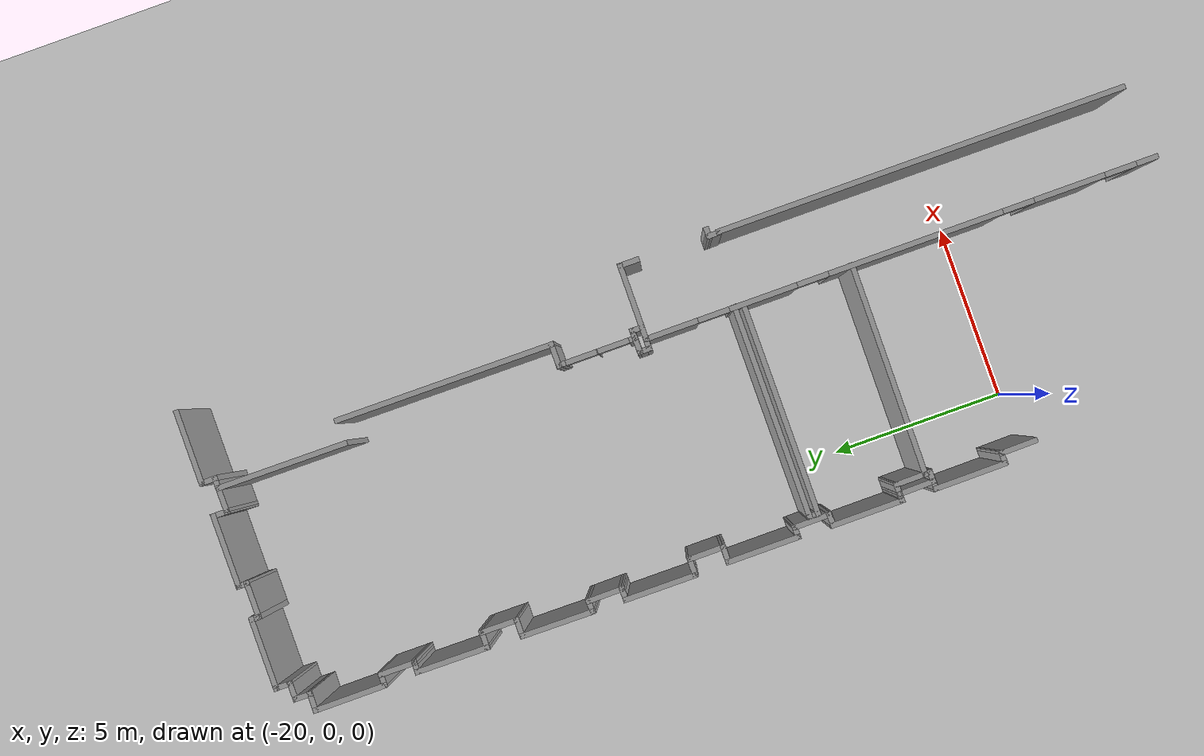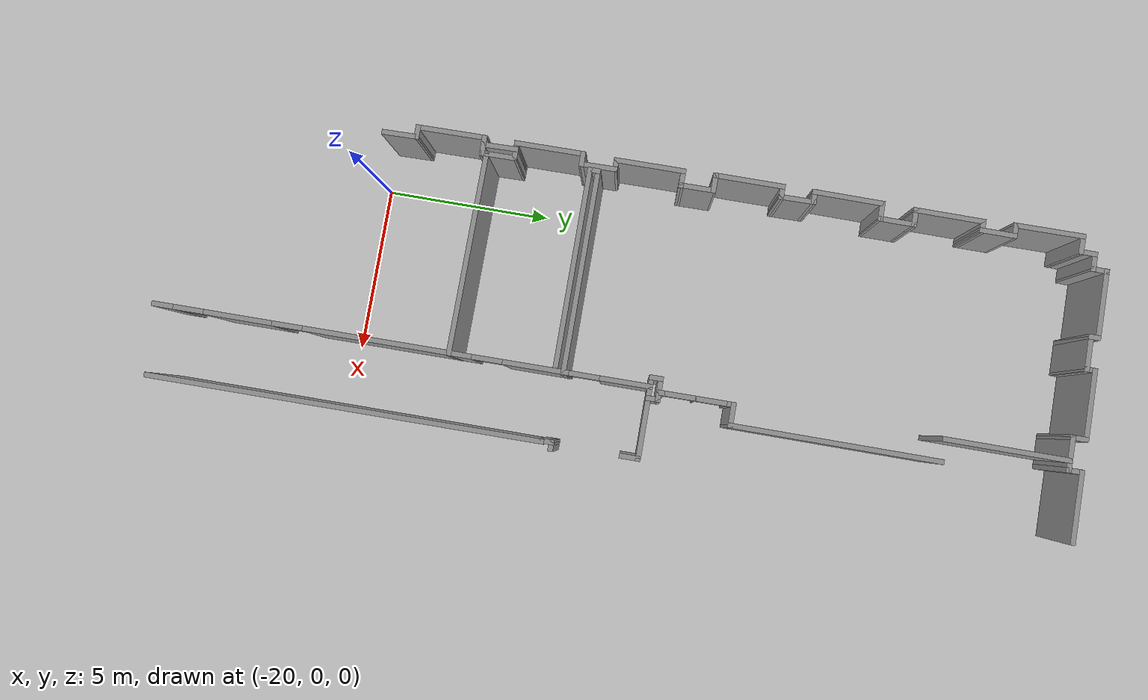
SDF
<sdf version="1.6">
 <world name="default">
  <model name="ground_plane">
   <static>1</static>
   <link name="link">
    <collision name="collision">
     <geometry><plane><normal>0 0 1</normal><size>100 100</size></plane></geometry>
     <surface>
      <contact><collide_bitmask>65535</collide_bitmask></contact>
      <friction><ode><mu>100</mu><mu2>50</mu2></ode></friction>
     </surface>
    </collision>
    <visual name="visual">
     <cast_shadows>0</cast_shadows>
     <geometry><plane><normal>0 0 1</normal><size>100 100</size></plane></geometry>
     <material>
      <script><uri>file://media/materials/scripts/gazebo.material</uri><name>Gazebo/Grey</name></script>
     </material>
    </visual>
   </link>
  </model>
  <model name="Myhal_5th_floor">
   <pose>-0.342666 0.4433 0 0 -0 0</pose>
   <link name="Wall_162">
    <collision name="Wall_162_Collision">
     <geometry><box><size>11.7261 0.15 2.5</size></box></geometry>
     <pose>0 0 1.25 0 -0 0</pose>
    </collision>
    <visual name="Wall_162_Visual">
     <pose>0 0 1.25 0 -0 0</pose>
     <geometry><box><size>11.7261 0.15 2.5</size></box></geometry>
     <material>
      <script><uri>file://media/materials/scripts/gazebo.material</uri><name>Gazebo/Grey</name></script>
      <ambient>1 1 1 1</ambient>
     </material>
     <meta><layer>0</layer></meta>
    </visual>
    <pose>-12.7689 0.018429 0 0 -0 1.57102</pose>
   </link>
   <link name="Wall_619">
    <collision name="Wall_619_Collision">
     <geometry><box><size>2.16684 0.15 2.5</size></box></geometry>
     <pose>0 0 1.25 0 -0 0</pose>
    </collision>
    <visual name="Wall_619_Visual">
     <pose>0 0 1.25 0 -0 0</pose>
     <geometry><box><size>2.16684 0.15 2.5</size></box></geometry>
     <material>
      <script><uri>file://media/materials/scripts/gazebo.material</uri><name>Gazebo/Grey</name></script>
      <ambient>1 1 1 1</ambient>
     </material>
     <meta><layer>0</layer></meta>
    </visual>
    <pose>-13.4625 21.2321 0 0 -0 3.14159</pose>
   </link>
   <link name="Wall_620">
    <collision name="Wall_620_Collision">
     <geometry><box><size>0.532558 0.15 2.5</size></box></geometry>
     <pose>0 0 1.25 0 -0 0</pose>
    </collision>
    <visual name="Wall_620_Visual">
     <pose>0 0 1.25 0 -0 0</pose>
     <geometry><box><size>0.532558 0.15 2.5</size></box></geometry>
     <material>
      <script><uri>file://media/materials/scripts/gazebo.material</uri><name>Gazebo/Grey</name></script>
      <ambient>1 1 1 1</ambient>
     </material>
     <meta><layer>0</layer></meta>
    </visual>
    <pose>-14.4728 21.0408 0 0 -0 -1.56134</pose>
   </link>
   <link name="Wall_621">
    <collision name="Wall_621_Collision">
     <geometry><box><size>1.09763 0.15 2.5</size></box></geometry>
     <pose>0 0 1.25 0 -0 0</pose>
    </collision>
    <visual name="Wall_621_Visual">
     <pose>0 0 1.25 0 -0 0</pose>
     <geometry><box><size>1.09763 0.15 2.5</size></box></geometry>
     <material>
      <script><uri>file://media/materials/scripts/gazebo.material</uri><name>Gazebo/Grey</name></script>
      <ambient>1 1 1 1</ambient>
     </material>
     <meta><layer>0</layer></meta>
    </visual>
    <pose>-14.9484 20.8514 0 0 -0 -3.13778</pose>
   </link>
   <link name="Wall_622">
    <collision name="Wall_622_Collision">
     <geometry><box><size>0.532541 0.15 2.5</size></box></geometry>
     <pose>0 0 1.25 0 -0 0</pose>
    </collision>
    <visual name="Wall_622_Visual">
     <pose>0 0 1.25 0 -0 0</pose>
     <geometry><box><size>0.532541 0.15 2.5</size></box></geometry>
     <material>
      <script><uri>file://media/materials/scripts/gazebo.material</uri><name>Gazebo/Grey</name></script>
      <ambient>1 1 1 1</ambient>
     </material>
     <meta><layer>0</layer></meta>
    </visual>
    <pose>-15.4186 21.0408 0 0 -0 1.5708</pose>
   </link>
   <link name="Wall_624">
    <collision name="Wall_624_Collision">
     <geometry><box><size>3.76142 0.15 2.5</size></box></geometry>
     <pose>0 0 1.25 0 -0 0</pose>
    </collision>
    <visual name="Wall_624_Visual">
     <pose>0 0 1.25 0 -0 0</pose>
     <geometry><box><size>3.76142 0.15 2.5</size></box></geometry>
     <material>
      <script><uri>file://media/materials/scripts/gazebo.material</uri><name>Gazebo/Grey</name></script>
      <ambient>1 1 1 1</ambient>
     </material>
     <meta><layer>0</layer></meta>
    </visual>
    <pose>-14.7552 19.0459 0 0 -0 -1.57409</pose>
   </link>
   <link name="Wall_648">
    <collision name="Wall_648_Collision">
     <geometry><box><size>0.623688 0.15 2.5</size></box></geometry>
     <pose>0 0 1.25 0 -0 0</pose>
    </collision>
    <visual name="Wall_648_Visual">
     <pose>0 0 1.25 0 -0 0</pose>
     <geometry><box><size>0.623688 0.15 2.5</size></box></geometry>
     <material>
      <script><uri>file://media/materials/scripts/gazebo.material</uri><name>Gazebo/Grey</name></script>
      <ambient>1 1 1 1</ambient>
     </material>
     <meta><layer>0</layer></meta>
    </visual>
    <pose>-12.7463 8.38799 0 0 -0 1.5683</pose>
   </link>
   <link name="Wall_651">
    <collision name="Wall_651_Collision">
     <geometry><box><size>2.24872 0.15 2.5</size></box></geometry>
     <pose>0 0 1.25 0 -0 0</pose>
    </collision>
    <visual name="Wall_651_Visual">
     <pose>0 0 1.25 0 -0 0</pose>
     <geometry><box><size>2.24872 0.15 2.5</size></box></geometry>
     <material>
      <script><uri>file://media/materials/scripts/gazebo.material</uri><name>Gazebo/Grey</name></script>
      <ambient>1 1 1 1</ambient>
     </material>
     <meta><layer>0</layer></meta>
    </visual>
    <pose>-13.7951 8.62718 0 0 -0 3.13923</pose>
   </link>
   <link name="Wall_652">
    <pose>-14.84 1.32772 0 0 -0 -1.57019</pose>
    <visual name="Wall_652_Visual_0">
     <pose>-6.5977 0 1.25 0 -0 0</pose>
     <geometry><box><size>1.56841 0.15 2.5</size></box></geometry>
     <material>
      <script><uri>file://media/materials/scripts/gazebo.material</uri><name>Gazebo/Grey</name></script>
      <ambient>1 1 1 1</ambient>
     </material>
     <meta><layer>0</layer></meta>
    </visual>
    <collision name="Wall_652_Collision_0">
     <geometry><box><size>1.56841 0.15 2.5</size></box></geometry>
     <pose>-6.5977 0 1.25 0 -0 0</pose>
    </collision>
    <visual name="Wall_652_Visual_1">
     <pose>-3.93962 0 1.25 0 -0 0</pose>
     <geometry><box><size>1.94773 0.15 2.5</size></box></geometry>
     <material>
      <script><uri>file://media/materials/scripts/gazebo.material</uri><name>Gazebo/Grey</name></script>
      <ambient>1 1 1 1</ambient>
     </material>
     <meta><layer>0</layer></meta>
    </visual>
    <collision name="Wall_652_Collision_1">
     <geometry><box><size>1.94773 0.15 2.5</size></box></geometry>
     <pose>-3.93962 0 1.25 0 -0 0</pose>
    </collision>
    <visual name="Wall_652_Visual_2">
     <pose>0.430387 0 1.25 0 -0 0</pose>
     <geometry><box><size>4.99229 0.15 2.5</size></box></geometry>
     <material>
      <script><uri>file://media/materials/scripts/gazebo.material</uri><name>Gazebo/Grey</name></script>
      <ambient>1 1 1 1</ambient>
     </material>
     <meta><layer>0</layer></meta>
    </visual>
    <collision name="Wall_652_Collision_2">
     <geometry><box><size>4.99229 0.15 2.5</size></box></geometry>
     <pose>0.430387 0 1.25 0 -0 0</pose>
    </collision>
    <visual name="Wall_652_Visual_3">
     <pose>4.83976 0 1.25 0 -0 0</pose>
     <geometry><box><size>2.02645 0.15 2.5</size></box></geometry>
     <material>
      <script><uri>file://media/materials/scripts/gazebo.material</uri><name>Gazebo/Grey</name></script>
      <ambient>1 1 1 1</ambient>
     </material>
     <meta><layer>0</layer></meta>
    </visual>
    <collision name="Wall_652_Collision_3">
     <geometry><box><size>2.02645 0.15 2.5</size></box></geometry>
     <pose>4.83976 0 1.25 0 -0 0</pose>
    </collision>
    <visual name="Wall_652_Visual_4">
     <pose>7.06745 0 1.25 0 -0 0</pose>
     <geometry><box><size>0.628919 0.15 2.5</size></box></geometry>
     <material>
      <script><uri>file://media/materials/scripts/gazebo.material</uri><name>Gazebo/Grey</name></script>
      <ambient>1 1 1 1</ambient>
     </material>
     <meta><layer>0</layer></meta>
    </visual>
    <collision name="Wall_652_Collision_4">
     <geometry><box><size>0.628919 0.15 2.5</size></box></geometry>
     <pose>7.06745 0 1.25 0 -0 0</pose>
    </collision>
    <visual name="Wall_652_Visual_5">
     <pose>-5.36349 0 2.25 0 -0 0</pose>
     <geometry><box><size>0.9 0.15 0.5</size></box></geometry>
     <material>
      <script><uri>file://media/materials/scripts/gazebo.material</uri><name>Gazebo/Grey</name></script>
      <ambient>1 1 1 1</ambient>
     </material>
     <meta><layer>0</layer></meta>
    </visual>
    <collision name="Wall_652_Collision_5">
     <geometry><box><size>0.9 0.15 0.5</size></box></geometry>
     <pose>-5.36349 0 2.25 0 -0 0</pose>
    </collision>
    <visual name="Wall_652_Visual_6">
     <pose>-2.51576 0 2.25 0 -0 0</pose>
     <geometry><box><size>0.9 0.15 0.5</size></box></geometry>
     <material>
      <script><uri>file://media/materials/scripts/gazebo.material</uri><name>Gazebo/Grey</name></script>
      <ambient>1 1 1 1</ambient>
     </material>
     <meta><layer>0</layer></meta>
    </visual>
    <collision name="Wall_652_Collision_6">
     <geometry><box><size>0.9 0.15 0.5</size></box></geometry>
     <pose>-2.51576 0 2.25 0 -0 0</pose>
    </collision>
    <visual name="Wall_652_Visual_7">
     <pose>3.37653 0 2.25 0 -0 0</pose>
     <geometry><box><size>0.9 0.15 0.5</size></box></geometry>
     <material>
      <script><uri>file://media/materials/scripts/gazebo.material</uri><name>Gazebo/Grey</name></script>
      <ambient>1 1 1 1</ambient>
     </material>
     <meta><layer>0</layer></meta>
    </visual>
    <collision name="Wall_652_Collision_7">
     <geometry><box><size>0.9 0.15 0.5</size></box></geometry>
     <pose>3.37653 0 2.25 0 -0 0</pose>
    </collision>
    <visual name="Wall_652_Visual_8">
     <pose>6.30299 0 2.25 0 -0 0</pose>
     <geometry><box><size>0.9 0.15 0.5</size></box></geometry>
     <material>
      <script><uri>file://media/materials/scripts/gazebo.material</uri><name>Gazebo/Grey</name></script>
      <ambient>1 1 1 1</ambient>
     </material>
     <meta><layer>0</layer></meta>
    </visual>
    <collision name="Wall_652_Collision_8">
     <geometry><box><size>0.9 0.15 0.5</size></box></geometry>
     <pose>6.30299 0 2.25 0 -0 0</pose>
    </collision>
   </link>
   <link name="Wall_654">
    <collision name="Wall_654_Collision">
     <geometry><box><size>0.428203 0.15 2.5</size></box></geometry>
     <pose>0 0 1.25 0 -0 0</pose>
    </collision>
    <visual name="Wall_654_Visual">
     <pose>0 0 1.25 0 -0 0</pose>
     <geometry><box><size>0.428203 0.15 2.5</size></box></geometry>
     <material>
      <script><uri>file://media/materials/scripts/gazebo.material</uri><name>Gazebo/Grey</name></script>
      <ambient>1 1 1 1</ambient>
     </material>
     <meta><layer>0</layer></meta>
    </visual>
    <pose>-14.5079 8.7684 0 0 -0 1.56432</pose>
   </link>
   <link name="Wall_655">
    <collision name="Wall_655_Collision">
     <geometry><box><size>0.758768 0.15 2.5</size></box></geometry>
     <pose>0 0 1.25 0 -0 0</pose>
    </collision>
    <visual name="Wall_655_Visual">
     <pose>0 0 1.25 0 -0 0</pose>
     <geometry><box><size>0.758768 0.15 2.5</size></box></geometry>
     <material>
      <script><uri>file://media/materials/scripts/gazebo.material</uri><name>Gazebo/Grey</name></script>
      <ambient>1 1 1 1</ambient>
     </material>
     <meta><layer>0</layer></meta>
    </visual>
    <pose>-14.8114 8.90436 0 0 -0 -3.13125</pose>
   </link>
   <link name="Wall_656">
    <collision name="Wall_656_Collision">
     <geometry><box><size>0.414703 0.15 2.5</size></box></geometry>
     <pose>0 0 1.25 0 -0 0</pose>
    </collision>
    <visual name="Wall_656_Visual">
     <pose>0 0 1.25 0 -0 0</pose>
     <geometry><box><size>0.414703 0.15 2.5</size></box></geometry>
     <material>
      <script><uri>file://media/materials/scripts/gazebo.material</uri><name>Gazebo/Grey</name></script>
      <ambient>1 1 1 1</ambient>
     </material>
     <meta><layer>0</layer></meta>
    </visual>
    <pose>-15.1158 8.76851 0 0 -0 -1.5708</pose>
   </link>
   <link name="Wall_657">
    <collision name="Wall_657_Collision">
     <geometry><box><size>0.421935 0.15 2.5</size></box></geometry>
     <pose>0 0 1.25 0 -0 0</pose>
    </collision>
    <visual name="Wall_657_Visual">
     <pose>0 0 1.25 0 -0 0</pose>
     <geometry><box><size>0.421935 0.15 2.5</size></box></geometry>
     <material>
      <script><uri>file://media/materials/scripts/gazebo.material</uri><name>Gazebo/Grey</name></script>
      <ambient>1 1 1 1</ambient>
     </material>
     <meta><layer>0</layer></meta>
    </visual>
    <pose>-14.9801 8.63521 0 0 -0 -0.004374</pose>
   </link>
   <link name="Wall_659">
    <collision name="Wall_659_Collision">
     <geometry><box><size>6.13418 0.15 2.5</size></box></geometry>
     <pose>0 0 1.25 0 -0 0</pose>
    </collision>
    <visual name="Wall_659_Visual">
     <pose>0 0 1.25 0 -0 0</pose>
     <geometry><box><size>6.13418 0.15 2.5</size></box></geometry>
     <material>
      <script><uri>file://media/materials/scripts/gazebo.material</uri><name>Gazebo/Grey</name></script>
      <ambient>1 1 1 1</ambient>
     </material>
     <meta><layer>0</layer></meta>
    </visual>
    <pose>-17.8464 5.8382 0 0 -0 3.14159</pose>
   </link>
   <link name="Wall_660">
    <collision name="Wall_660_Collision">
     <geometry><box><size>0.392778 0.15 2.5</size></box></geometry>
     <pose>0 0 1.25 0 -0 0</pose>
    </collision>
    <visual name="Wall_660_Visual">
     <pose>0 0 1.25 0 -0 0</pose>
     <geometry><box><size>0.392778 0.15 2.5</size></box></geometry>
     <material>
      <script><uri>file://media/materials/scripts/gazebo.material</uri><name>Gazebo/Grey</name></script>
      <ambient>1 1 1 1</ambient>
     </material>
     <meta><layer>0</layer></meta>
    </visual>
    <pose>-20.8385 5.95959 0 0 -0 1.5708</pose>
   </link>
   <link name="Wall_661">
    <collision name="Wall_661_Collision">
     <geometry><box><size>6.15384 0.15 2.5</size></box></geometry>
     <pose>0 0 1.25 0 -0 0</pose>
    </collision>
    <visual name="Wall_661_Visual">
     <pose>0 0 1.25 0 -0 0</pose>
     <geometry><box><size>6.15384 0.15 2.5</size></box></geometry>
     <material>
      <script><uri>file://media/materials/scripts/gazebo.material</uri><name>Gazebo/Grey</name></script>
      <ambient>1 1 1 1</ambient>
     </material>
     <meta><layer>0</layer></meta>
    </visual>
    <pose>-17.8366 6.08426 0 0 -0 0.001093</pose>
   </link>
   <link name="Wall_663">
    <collision name="Wall_663_Collision">
     <geometry><box><size>6.11936 0.15 2.5</size></box></geometry>
     <pose>0 0 1.25 0 -0 0</pose>
    </collision>
    <visual name="Wall_663_Visual">
     <pose>0 0 1.25 0 -0 0</pose>
     <geometry><box><size>6.11936 0.15 2.5</size></box></geometry>
     <material>
      <script><uri>file://media/materials/scripts/gazebo.material</uri><name>Gazebo/Grey</name></script>
      <ambient>1 1 1 1</ambient>
     </material>
     <meta><layer>0</layer></meta>
    </visual>
    <pose>-17.8193 2.73811 0 0 -0 3.13601</pose>
   </link>
   <link name="Wall_664">
    <collision name="Wall_664_Collision">
     <geometry><box><size>0.982845 0.15 2.5</size></box></geometry>
     <pose>0 0 1.25 0 -0 0</pose>
    </collision>
    <visual name="Wall_664_Visual">
     <pose>0 0 1.25 0 -0 0</pose>
     <geometry><box><size>0.982845 0.15 2.5</size></box></geometry>
     <material>
      <script><uri>file://media/materials/scripts/gazebo.material</uri><name>Gazebo/Grey</name></script>
      <ambient>1 1 1 1</ambient>
     </material>
     <meta><layer>0</layer></meta>
    </visual>
    <pose>-20.8081 3.17118 0 0 -0 1.58079</pose>
   </link>
   <link name="Wall_665">
    <collision name="Wall_665_Collision">
     <geometry><box><size>0.419024 0.15 2.5</size></box></geometry>
     <pose>0 0 1.25 0 -0 0</pose>
    </collision>
    <visual name="Wall_665_Visual">
     <pose>0 0 1.25 0 -0 0</pose>
     <geometry><box><size>0.419024 0.15 2.5</size></box></geometry>
     <material>
      <script><uri>file://media/materials/scripts/gazebo.material</uri><name>Gazebo/Grey</name></script>
      <ambient>1 1 1 1</ambient>
     </material>
     <meta><layer>0</layer></meta>
    </visual>
    <pose>-20.9468 3.58758 0 0 -0 3.14159</pose>
   </link>
   <link name="Wall_666">
    <collision name="Wall_666_Collision">
     <geometry><box><size>1.12327 0.15 2.5</size></box></geometry>
     <pose>0 0 1.25 0 -0 0</pose>
    </collision>
    <visual name="Wall_666_Visual">
     <pose>0 0 1.25 0 -0 0</pose>
     <geometry><box><size>1.12327 0.15 2.5</size></box></geometry>
     <material>
      <script><uri>file://media/materials/scripts/gazebo.material</uri><name>Gazebo/Grey</name></script>
      <ambient>1 1 1 1</ambient>
     </material>
     <meta><layer>0</layer></meta>
    </visual>
    <pose>-21.0717 3.10104 0 0 -0 -1.55113</pose>
   </link>
   <link name="Wall_667">
    <collision name="Wall_667_Collision">
     <geometry><box><size>0.412804 0.15 2.5</size></box></geometry>
     <pose>0 0 1.25 0 -0 0</pose>
    </collision>
    <visual name="Wall_667_Visual">
     <pose>0 0 1.25 0 -0 0</pose>
     <geometry><box><size>0.412804 0.15 2.5</size></box></geometry>
     <material>
      <script><uri>file://media/materials/scripts/gazebo.material</uri><name>Gazebo/Grey</name></script>
      <ambient>1 1 1 1</ambient>
     </material>
     <meta><layer>0</layer></meta>
    </visual>
    <pose>-20.9308 2.61681 0 0 -0 0.017627</pose>
   </link>
   <link name="Wall_668">
    <collision name="Wall_668_Collision">
     <geometry><box><size>0.287139 0.15 2.5</size></box></geometry>
     <pose>0 0 1.25 0 -0 0</pose>
    </collision>
    <visual name="Wall_668_Visual">
     <pose>0 0 1.25 0 -0 0</pose>
     <geometry><box><size>0.287139 0.15 2.5</size></box></geometry>
     <material>
      <script><uri>file://media/materials/scripts/gazebo.material</uri><name>Gazebo/Grey</name></script>
      <ambient>1 1 1 1</ambient>
     </material>
     <meta><layer>0</layer></meta>
    </visual>
    <pose>-20.8017 2.68766 0 0 -0 1.60402</pose>
   </link>
   <link name="Wall_694">
    <collision name="Wall_694_Collision">
     <geometry><box><size>1.11057 0.15 2.5</size></box></geometry>
     <pose>0 0 1.25 0 -0 0</pose>
    </collision>
    <visual name="Wall_694_Visual">
     <pose>0 0 1.25 0 -0 0</pose>
     <geometry><box><size>1.11057 0.15 2.5</size></box></geometry>
     <material>
      <script><uri>file://media/materials/scripts/gazebo.material</uri><name>Gazebo/Grey</name></script>
      <ambient>1 1 1 1</ambient>
     </material>
     <meta><layer>0</layer></meta>
    </visual>
    <pose>-20.9578 0.146166 0 0 -0 1.58638</pose>
   </link>
   <link name="Wall_697">
    <collision name="Wall_697_Collision">
     <geometry><box><size>0.359448 0.15 2.5</size></box></geometry>
     <pose>0 0 1.25 0 -0 0</pose>
    </collision>
    <visual name="Wall_697_Visual">
     <pose>0 0 1.25 0 -0 0</pose>
     <geometry><box><size>0.359448 0.15 2.5</size></box></geometry>
     <material>
      <script><uri>file://media/materials/scripts/gazebo.material</uri><name>Gazebo/Grey</name></script>
      <ambient>1 1 1 1</ambient>
     </material>
     <meta><layer>0</layer></meta>
    </visual>
    <pose>-21.1683 2.61261 0 0 -0 -3.12358</pose>
   </link>
   <link name="Wall_698">
    <collision name="Wall_698_Collision">
     <geometry><box><size>2.13353 0.15 2.5</size></box></geometry>
     <pose>0 0 1.25 0 -0 0</pose>
    </collision>
    <visual name="Wall_698_Visual">
     <pose>0 0 1.25 0 -0 0</pose>
     <geometry><box><size>2.13353 0.15 2.5</size></box></geometry>
     <material>
      <script><uri>file://media/materials/scripts/gazebo.material</uri><name>Gazebo/Grey</name></script>
      <ambient>1 1 1 1</ambient>
     </material>
     <meta><layer>0</layer></meta>
    </visual>
    <pose>-21.264 1.61899 0 0 -0 -1.56315</pose>
   </link>
   <link name="Wall_699">
    <collision name="Wall_699_Collision">
     <geometry><box><size>0.441246 0.15 2.5</size></box></geometry>
     <pose>0 0 1.25 0 -0 0</pose>
    </collision>
    <visual name="Wall_699_Visual">
     <pose>0 0 1.25 0 -0 0</pose>
     <geometry><box><size>0.441246 0.15 2.5</size></box></geometry>
     <material>
      <script><uri>file://media/materials/scripts/gazebo.material</uri><name>Gazebo/Grey</name></script>
      <ambient>1 1 1 1</ambient>
     </material>
     <meta><layer>0</layer></meta>
    </visual>
    <pose>-21.1108 0.626823 0 0 -0 -0.00297</pose>
   </link>
   <link name="Wall_701">
    <collision name="Wall_701_Collision">
     <geometry><box><size>0.335464 0.15 2.5</size></box></geometry>
     <pose>0 0 1.25 0 -0 0</pose>
    </collision>
    <visual name="Wall_701_Visual">
     <pose>0 0 1.25 0 -0 0</pose>
     <geometry><box><size>0.335464 0.15 2.5</size></box></geometry>
     <material>
      <script><uri>file://media/materials/scripts/gazebo.material</uri><name>Gazebo/Grey</name></script>
      <ambient>1 1 1 1</ambient>
     </material>
     <meta><layer>0</layer></meta>
    </visual>
    <pose>-21.1739 3.58495 0 0 -0 -3.11322</pose>
   </link>
   <link name="Wall_702">
    <collision name="Wall_702_Collision">
     <geometry><box><size>2.12734 0.15 2.5</size></box></geometry>
     <pose>0 0 1.25 0 -0 0</pose>
    </collision>
    <visual name="Wall_702_Visual">
     <pose>0 0 1.25 0 -0 0</pose>
     <geometry><box><size>2.12734 0.15 2.5</size></box></geometry>
     <material>
      <script><uri>file://media/materials/scripts/gazebo.material</uri><name>Gazebo/Grey</name></script>
      <ambient>1 1 1 1</ambient>
     </material>
     <meta><layer>0</layer></meta>
    </visual>
    <pose>-21.2695 4.57099 0 0 -0 1.57393</pose>
   </link>
   <link name="Wall_703">
    <collision name="Wall_703_Collision">
     <geometry><box><size>0.458669 0.15 2.5</size></box></geometry>
     <pose>0 0 1.25 0 -0 0</pose>
    </collision>
    <visual name="Wall_703_Visual">
     <pose>0 0 1.25 0 -0 0</pose>
     <geometry><box><size>0.458669 0.15 2.5</size></box></geometry>
     <material>
      <script><uri>file://media/materials/scripts/gazebo.material</uri><name>Gazebo/Grey</name></script>
      <ambient>1 1 1 1</ambient>
     </material>
     <meta><layer>0</layer></meta>
    </visual>
    <pose>-21.1183 5.56093 0 0 -0 0.008273</pose>
   </link>
   <link name="Wall_705">
    <collision name="Wall_705_Collision">
     <geometry><box><size>1.14412 0.15 2.5</size></box></geometry>
     <pose>0 0 1.25 0 -0 0</pose>
    </collision>
    <visual name="Wall_705_Visual">
     <pose>0 0 1.25 0 -0 0</pose>
     <geometry><box><size>1.14412 0.15 2.5</size></box></geometry>
     <material>
      <script><uri>file://media/materials/scripts/gazebo.material</uri><name>Gazebo/Grey</name></script>
      <ambient>1 1 1 1</ambient>
     </material>
     <meta><layer>0</layer></meta>
    </visual>
    <pose>-20.9695 6.05924 0 0 -0 1.58177</pose>
   </link>
   <link name="Wall_707">
    <collision name="Wall_707_Collision">
     <geometry><box><size>0.424808 0.15 2.5</size></box></geometry>
     <pose>0 0 1.25 0 -0 0</pose>
    </collision>
    <visual name="Wall_707_Visual">
     <pose>0 0 1.25 0 -0 0</pose>
     <geometry><box><size>0.424808 0.15 2.5</size></box></geometry>
     <material>
      <script><uri>file://media/materials/scripts/gazebo.material</uri><name>Gazebo/Grey</name></script>
      <ambient>1 1 1 1</ambient>
     </material>
     <meta><layer>0</layer></meta>
    </visual>
    <pose>-21.1123 6.55726 0 0 -0 3.13436</pose>
   </link>
   <link name="Wall_708">
    <collision name="Wall_708_Collision">
     <geometry><box><size>2.14819 0.15 2.5</size></box></geometry>
     <pose>0 0 1.25 0 -0 0</pose>
    </collision>
    <visual name="Wall_708_Visual">
     <pose>0 0 1.25 0 -0 0</pose>
     <geometry><box><size>2.14819 0.15 2.5</size></box></geometry>
     <material>
      <script><uri>file://media/materials/scripts/gazebo.material</uri><name>Gazebo/Grey</name></script>
      <ambient>1 1 1 1</ambient>
     </material>
     <meta><layer>0</layer></meta>
    </visual>
    <pose>-21.2518 7.55734 0 0 -0 1.57289</pose>
   </link>
   <link name="Wall_709">
    <collision name="Wall_709_Collision">
     <geometry><box><size>0.578932 0.15 2.5</size></box></geometry>
     <pose>0 0 1.25 0 -0 0</pose>
    </collision>
    <visual name="Wall_709_Visual">
     <pose>0 0 1.25 0 -0 0</pose>
     <geometry><box><size>0.578932 0.15 2.5</size></box></geometry>
     <material>
      <script><uri>file://media/materials/scripts/gazebo.material</uri><name>Gazebo/Grey</name></script>
      <ambient>1 1 1 1</ambient>
     </material>
     <meta><layer>0</layer></meta>
    </visual>
    <pose>-21.038 8.5558 0 0 -0 -0.009451</pose>
   </link>
   <link name="Wall_710">
    <collision name="Wall_710_Collision">
     <geometry><box><size>1.11254 0.15 2.5</size></box></geometry>
     <pose>0 0 1.25 0 -0 0</pose>
    </collision>
    <visual name="Wall_710_Visual">
     <pose>0 0 1.25 0 -0 0</pose>
     <geometry><box><size>1.11254 0.15 2.5</size></box></geometry>
     <material>
      <script><uri>file://media/materials/scripts/gazebo.material</uri><name>Gazebo/Grey</name></script>
      <ambient>1 1 1 1</ambient>
     </material>
     <meta><layer>0</layer></meta>
    </visual>
    <pose>-20.826 9.03503 0 0 -0 1.57595</pose>
   </link>
   <link name="Wall_711">
    <collision name="Wall_711_Collision">
     <geometry><box><size>0.606457 0.15 2.5</size></box></geometry>
     <pose>0 0 1.25 0 -0 0</pose>
    </collision>
    <visual name="Wall_711_Visual">
     <pose>0 0 1.25 0 -0 0</pose>
     <geometry><box><size>0.606457 0.15 2.5</size></box></geometry>
     <material>
      <script><uri>file://media/materials/scripts/gazebo.material</uri><name>Gazebo/Grey</name></script>
      <ambient>1 1 1 1</ambient>
     </material>
     <meta><layer>0</layer></meta>
    </visual>
    <pose>-21.0568 9.5163 0 0 -0 3.14159</pose>
   </link>
   <link name="Wall_720">
    <collision name="Wall_720_Collision">
     <geometry><box><size>2.13956 0.15 2.5</size></box></geometry>
     <pose>0 0 1.25 0 -0 0</pose>
    </collision>
    <visual name="Wall_720_Visual">
     <pose>0 0 1.25 0 -0 0</pose>
     <geometry><box><size>2.13956 0.15 2.5</size></box></geometry>
     <material>
      <script><uri>file://media/materials/scripts/gazebo.material</uri><name>Gazebo/Grey</name></script>
      <ambient>1 1 1 1</ambient>
     </material>
     <meta><layer>0</layer></meta>
    </visual>
    <pose>-21.2825 10.5111 0 0 -0 1.5683</pose>
   </link>
   <link name="Wall_721">
    <collision name="Wall_721_Collision">
     <geometry><box><size>0.462574 0.15 2.5</size></box></geometry>
     <pose>0 0 1.25 0 -0 0</pose>
    </collision>
    <visual name="Wall_721_Visual">
     <pose>0 0 1.25 0 -0 0</pose>
     <geometry><box><size>0.462574 0.15 2.5</size></box></geometry>
     <material>
      <script><uri>file://media/materials/scripts/gazebo.material</uri><name>Gazebo/Grey</name></script>
      <ambient>1 1 1 1</ambient>
     </material>
     <meta><layer>0</layer></meta>
    </visual>
    <pose>-21.1237 11.5059 0 0 -0 0</pose>
   </link>
   <link name="Wall_722">
    <collision name="Wall_722_Collision">
     <geometry><box><size>1.11258 0.15 2.5</size></box></geometry>
     <pose>0 0 1.25 0 -0 0</pose>
    </collision>
    <visual name="Wall_722_Visual">
     <pose>0 0 1.25 0 -0 0</pose>
     <geometry><box><size>1.11258 0.15 2.5</size></box></geometry>
     <material>
      <script><uri>file://media/materials/scripts/gazebo.material</uri><name>Gazebo/Grey</name></script>
      <ambient>1 1 1 1</ambient>
     </material>
     <meta><layer>0</layer></meta>
    </visual>
    <pose>-20.9724 11.9871 0 0 -0 1.5811</pose>
   </link>
   <link name="Wall_723">
    <collision name="Wall_723_Collision">
     <geometry><box><size>0.453301 0.15 2.5</size></box></geometry>
     <pose>0 0 1.25 0 -0 0</pose>
    </collision>
    <visual name="Wall_723_Visual">
     <pose>0 0 1.25 0 -0 0</pose>
     <geometry><box><size>0.453301 0.15 2.5</size></box></geometry>
     <material>
      <script><uri>file://media/materials/scripts/gazebo.material</uri><name>Gazebo/Grey</name></script>
      <ambient>1 1 1 1</ambient>
     </material>
     <meta><layer>0</layer></meta>
    </visual>
    <pose>-21.1287 12.4634 0 0 -0 -3.10882</pose>
   </link>
   <link name="Wall_726">
    <collision name="Wall_726_Collision">
     <geometry><box><size>2.15793 0.15 2.5</size></box></geometry>
     <pose>0 0 1.25 0 -0 0</pose>
    </collision>
    <visual name="Wall_726_Visual">
     <pose>0 0 1.25 0 -0 0</pose>
     <geometry><box><size>2.15793 0.15 2.5</size></box></geometry>
     <material>
      <script><uri>file://media/materials/scripts/gazebo.material</uri><name>Gazebo/Grey</name></script>
      <ambient>1 1 1 1</ambient>
     </material>
     <meta><layer>0</layer></meta>
    </visual>
    <pose>-21.2722 13.4623 0 0 -0 1.56298</pose>
   </link>
   <link name="Wall_727">
    <collision name="Wall_727_Collision">
     <geometry><box><size>0.606457 0.15 2.5</size></box></geometry>
     <pose>0 0 1.25 0 -0 0</pose>
    </collision>
    <visual name="Wall_727_Visual">
     <pose>0 0 1.25 0 -0 0</pose>
     <geometry><box><size>0.606457 0.15 2.5</size></box></geometry>
     <material>
      <script><uri>file://media/materials/scripts/gazebo.material</uri><name>Gazebo/Grey</name></script>
      <ambient>1 1 1 1</ambient>
     </material>
     <meta><layer>0</layer></meta>
    </visual>
    <pose>-21.0361 14.4661 0 0 -0 0</pose>
   </link>
   <link name="Wall_728">
    <collision name="Wall_728_Collision">
     <geometry><box><size>1.14852 0.15 2.5</size></box></geometry>
     <pose>0 0 1.25 0 -0 0</pose>
    </collision>
    <visual name="Wall_728_Visual">
     <pose>0 0 1.25 0 -0 0</pose>
     <geometry><box><size>1.14852 0.15 2.5</size></box></geometry>
     <material>
      <script><uri>file://media/materials/scripts/gazebo.material</uri><name>Gazebo/Grey</name></script>
      <ambient>1 1 1 1</ambient>
     </material>
     <meta><layer>0</layer></meta>
    </visual>
    <pose>-20.805 14.9654 0 0 -0 1.56508</pose>
   </link>
   <link name="Wall_729">
    <collision name="Wall_729_Collision">
     <geometry><box><size>0.583634 0.15 2.5</size></box></geometry>
     <pose>0 0 1.25 0 -0 0</pose>
    </collision>
    <visual name="Wall_729_Visual">
     <pose>0 0 1.25 0 -0 0</pose>
     <geometry><box><size>0.583634 0.15 2.5</size></box></geometry>
     <material>
      <script><uri>file://media/materials/scripts/gazebo.material</uri><name>Gazebo/Grey</name></script>
      <ambient>1 1 1 1</ambient>
     </material>
     <meta><layer>0</layer></meta>
    </visual>
    <pose>-21.019 15.4646 0 0 -0 3.14159</pose>
   </link>
   <link name="Wall_731">
    <collision name="Wall_731_Collision">
     <geometry><box><size>2.1413 0.15 2.5</size></box></geometry>
     <pose>0 0 1.25 0 -0 0</pose>
    </collision>
    <visual name="Wall_731_Visual">
     <pose>0 0 1.25 0 -0 0</pose>
     <geometry><box><size>2.1413 0.15 2.5</size></box></geometry>
     <material>
      <script><uri>file://media/materials/scripts/gazebo.material</uri><name>Gazebo/Grey</name></script>
      <ambient>1 1 1 1</ambient>
     </material>
     <meta><layer>0</layer></meta>
    </visual>
    <pose>-21.2301 16.4603 0 0 -0 1.56507</pose>
   </link>
   <link name="Wall_732">
    <collision name="Wall_732_Collision">
     <geometry><box><size>0.41301 0.15 2.5</size></box></geometry>
     <pose>0 0 1.25 0 -0 0</pose>
    </collision>
    <visual name="Wall_732_Visual">
     <pose>0 0 1.25 0 -0 0</pose>
     <geometry><box><size>0.41301 0.15 2.5</size></box></geometry>
     <material>
      <script><uri>file://media/materials/scripts/gazebo.material</uri><name>Gazebo/Grey</name></script>
      <ambient>1 1 1 1</ambient>
     </material>
     <meta><layer>0</layer></meta>
    </visual>
    <pose>-21.093 17.4536 0 0 -0 -0.017549</pose>
   </link>
   <link name="Wall_733">
    <collision name="Wall_733_Collision">
     <geometry><box><size>1.11042 0.15 2.5</size></box></geometry>
     <pose>0 0 1.25 0 -0 0</pose>
    </collision>
    <visual name="Wall_733_Visual">
     <pose>0 0 1.25 0 -0 0</pose>
     <geometry><box><size>1.11042 0.15 2.5</size></box></geometry>
     <material>
      <script><uri>file://media/materials/scripts/gazebo.material</uri><name>Gazebo/Grey</name></script>
      <ambient>1 1 1 1</ambient>
     </material>
     <meta><layer>0</layer></meta>
    </visual>
    <pose>-20.9598 17.9315 0 0 -0 1.56689</pose>
   </link>
   <link name="Wall_734">
    <collision name="Wall_734_Collision">
     <geometry><box><size>0.462196 0.15 2.5</size></box></geometry>
     <pose>0 0 1.25 0 -0 0</pose>
    </collision>
    <visual name="Wall_734_Visual">
     <pose>0 0 1.25 0 -0 0</pose>
     <geometry><box><size>0.462196 0.15 2.5</size></box></geometry>
     <material>
      <script><uri>file://media/materials/scripts/gazebo.material</uri><name>Gazebo/Grey</name></script>
      <ambient>1 1 1 1</ambient>
     </material>
     <meta><layer>0</layer></meta>
    </visual>
    <pose>-21.114 18.4131 0 0 -0 3.13275</pose>
   </link>
   <link name="Wall_737">
    <collision name="Wall_737_Collision">
     <geometry><box><size>2.12989 0.15 2.5</size></box></geometry>
     <pose>0 0 1.25 0 -0 0</pose>
    </collision>
    <visual name="Wall_737_Visual">
     <pose>0 0 1.25 0 -0 0</pose>
     <geometry><box><size>2.12989 0.15 2.5</size></box></geometry>
     <material>
      <script><uri>file://media/materials/scripts/gazebo.material</uri><name>Gazebo/Grey</name></script>
      <ambient>1 1 1 1</ambient>
     </material>
     <meta><layer>0</layer></meta>
    </visual>
    <pose>-21.2729 19.4044 0 0 -0 1.57368</pose>
   </link>
   <link name="Wall_738">
    <collision name="Wall_738_Collision">
     <geometry><box><size>0.612163 0.15 2.5</size></box></geometry>
     <pose>0 0 1.25 0 -0 0</pose>
    </collision>
    <visual name="Wall_738_Visual">
     <pose>0 0 1.25 0 -0 0</pose>
     <geometry><box><size>0.612163 0.15 2.5</size></box></geometry>
     <material>
      <script><uri>file://media/materials/scripts/gazebo.material</uri><name>Gazebo/Grey</name></script>
      <ambient>1 1 1 1</ambient>
     </material>
     <meta><layer>0</layer></meta>
    </visual>
    <pose>-21.0447 20.3906 0 0 -0 -0.016234</pose>
   </link>
   <link name="Wall_739">
    <collision name="Wall_739_Collision">
     <geometry><box><size>0.560913 0.15 2.5</size></box></geometry>
     <pose>0 0 1.25 0 -0 0</pose>
    </collision>
    <visual name="Wall_739_Visual">
     <pose>0 0 1.25 0 -0 0</pose>
     <geometry><box><size>0.560913 0.15 2.5</size></box></geometry>
     <material>
      <script><uri>file://media/materials/scripts/gazebo.material</uri><name>Gazebo/Grey</name></script>
      <ambient>1 1 1 1</ambient>
     </material>
     <meta><layer>0</layer></meta>
    </visual>
    <pose>-20.8107 20.5961 0 0 -0 1.55684</pose>
   </link>
   <link name="Wall_740">
    <collision name="Wall_740_Collision">
     <geometry><box><size>0.589624 0.15 2.5</size></box></geometry>
     <pose>0 0 1.25 0 -0 0</pose>
    </collision>
    <visual name="Wall_740_Visual">
     <pose>0 0 1.25 0 -0 0</pose>
     <geometry><box><size>0.589624 0.15 2.5</size></box></geometry>
     <material>
      <script><uri>file://media/materials/scripts/gazebo.material</uri><name>Gazebo/Grey</name></script>
      <ambient>1 1 1 1</ambient>
     </material>
     <meta><layer>0</layer></meta>
    </visual>
    <pose>-20.588 20.8014 0 0 -0 -0.000504</pose>
   </link>
   <link name="Wall_741">
    <collision name="Wall_741_Collision">
     <geometry><box><size>0.549441 0.15 2.5</size></box></geometry>
     <pose>0 0 1.25 0 -0 0</pose>
    </collision>
    <visual name="Wall_741_Visual">
     <pose>0 0 1.25 0 -0 0</pose>
     <geometry><box><size>0.549441 0.15 2.5</size></box></geometry>
     <material>
      <script><uri>file://media/materials/scripts/gazebo.material</uri><name>Gazebo/Grey</name></script>
      <ambient>1 1 1 1</ambient>
     </material>
     <meta><layer>0</layer></meta>
    </visual>
    <pose>-20.3616 21.001 0 0 -0 1.55651</pose>
   </link>
   <link name="Wall_742">
    <collision name="Wall_742_Collision">
     <geometry><box><size>2.12386 0.15 2.5</size></box></geometry>
     <pose>0 0 1.25 0 -0 0</pose>
    </collision>
    <visual name="Wall_742_Visual">
     <pose>0 0 1.25 0 -0 0</pose>
     <geometry><box><size>2.12386 0.15 2.5</size></box></geometry>
     <material>
      <script><uri>file://media/materials/scripts/gazebo.material</uri><name>Gazebo/Grey</name></script>
      <ambient>1 1 1 1</ambient>
     </material>
     <meta><layer>0</layer></meta>
    </visual>
    <pose>-19.3756 21.1998 0 0 -0 -0.000911</pose>
   </link>
   <link name="Wall_743">
    <collision name="Wall_743_Collision">
     <geometry><box><size>0.355406 0.15 2.5</size></box></geometry>
     <pose>0 0 1.25 0 -0 0</pose>
    </collision>
    <visual name="Wall_743_Visual">
     <pose>0 0 1.25 0 -0 0</pose>
     <geometry><box><size>0.355406 0.15 2.5</size></box></geometry>
     <material>
      <script><uri>file://media/materials/scripts/gazebo.material</uri><name>Gazebo/Grey</name></script>
      <ambient>1 1 1 1</ambient>
     </material>
     <meta><layer>0</layer></meta>
    </visual>
    <pose>-18.3887 21.0962 0 0 -0 -1.5708</pose>
   </link>
   <link name="Wall_744">
    <collision name="Wall_744_Collision">
     <geometry><box><size>1.10287 0.15 2.5</size></box></geometry>
     <pose>0 0 1.25 0 -0 0</pose>
    </collision>
    <visual name="Wall_744_Visual">
     <pose>0 0 1.25 0 -0 0</pose>
     <geometry><box><size>1.10287 0.15 2.5</size></box></geometry>
     <material>
      <script><uri>file://media/materials/scripts/gazebo.material</uri><name>Gazebo/Grey</name></script>
      <ambient>1 1 1 1</ambient>
     </material>
     <meta><layer>0</layer></meta>
    </visual>
    <pose>-17.9122 20.9935 0 0 -0 0</pose>
   </link>
   <link name="Wall_745">
    <collision name="Wall_745_Collision">
     <geometry><box><size>0.385848 0.15 2.5</size></box></geometry>
     <pose>0 0 1.25 0 -0 0</pose>
    </collision>
    <visual name="Wall_745_Visual">
     <pose>0 0 1.25 0 -0 0</pose>
     <geometry><box><size>0.385848 0.15 2.5</size></box></geometry>
     <material>
      <script><uri>file://media/materials/scripts/gazebo.material</uri><name>Gazebo/Grey</name></script>
      <ambient>1 1 1 1</ambient>
     </material>
     <meta><layer>0</layer></meta>
    </visual>
    <pose>-17.4317 21.1113 0 0 -0 1.53626</pose>
   </link>
   <link name="Wall_746">
    <collision name="Wall_746_Collision">
     <geometry><box><size>2.15909 0.15 2.5</size></box></geometry>
     <pose>0 0 1.25 0 -0 0</pose>
    </collision>
    <visual name="Wall_746_Visual">
     <pose>0 0 1.25 0 -0 0</pose>
     <geometry><box><size>2.15909 0.15 2.5</size></box></geometry>
     <material>
      <script><uri>file://media/materials/scripts/gazebo.material</uri><name>Gazebo/Grey</name></script>
      <ambient>1 1 1 1</ambient>
     </material>
     <meta><layer>0</layer></meta>
    </visual>
    <pose>-16.4231 21.2306 0 0 -0 0.001451</pose>
   </link>
   <link name="Wall_748">
    <collision name="Wall_748_Collision">
     <geometry><box><size>6.28909 0.15 2.5</size></box></geometry>
     <pose>0 0 1.25 0 -0 0</pose>
    </collision>
    <visual name="Wall_748_Visual">
     <pose>0 0 1.25 0 -0 0</pose>
     <geometry><box><size>6.28909 0.15 2.5</size></box></geometry>
     <material>
      <script><uri>file://media/materials/scripts/gazebo.material</uri><name>Gazebo/Grey</name></script>
      <ambient>1 1 1 1</ambient>
     </material>
     <meta><layer>0</layer></meta>
    </visual>
    <pose>-14.1141 14.1569 0 0 -0 -1.57385</pose>
   </link>
   <link name="Wall_750">
    <collision name="Wall_750_Collision">
     <geometry><box><size>0.75 0.15 2.5</size></box></geometry>
     <pose>0 0 1.25 0 -0 0</pose>
    </collision>
    <visual name="Wall_750_Visual">
     <pose>0 0 1.25 0 -0 0</pose>
     <geometry><box><size>0.75 0.15 2.5</size></box></geometry>
     <material>
      <script><uri>file://media/materials/scripts/gazebo.material</uri><name>Gazebo/Grey</name></script>
      <ambient>1 1 1 1</ambient>
     </material>
     <meta><layer>0</layer></meta>
    </visual>
    <pose>-14.4235 11.0874 0 0 -0 3.14159</pose>
   </link>
   <link name="Wall_751">
    <pose>-14.7218 10.0144 0 0 -0 -1.56929</pose>
    <visual name="Wall_751_Visual_0">
     <pose>-1.01411 0 1.25 0 -0 0</pose>
     <geometry><box><size>0.267828 0.15 2.5</size></box></geometry>
     <material>
      <script><uri>file://media/materials/scripts/gazebo.material</uri><name>Gazebo/Grey</name></script>
      <ambient>1 1 1 1</ambient>
     </material>
     <meta><layer>0</layer></meta>
    </visual>
    <collision name="Wall_751_Collision_0">
     <geometry><box><size>0.267828 0.15 2.5</size></box></geometry>
     <pose>-1.01411 0 1.25 0 -0 0</pose>
    </collision>
    <visual name="Wall_751_Visual_1">
     <pose>0.02877 0 1.25 0 -0 0</pose>
     <geometry><box><size>0.017941 0.15 2.5</size></box></geometry>
     <material>
      <script><uri>file://media/materials/scripts/gazebo.material</uri><name>Gazebo/Grey</name></script>
      <ambient>1 1 1 1</ambient>
     </material>
     <meta><layer>0</layer></meta>
    </visual>
    <collision name="Wall_751_Collision_1">
     <geometry><box><size>0.017941 0.15 2.5</size></box></geometry>
     <pose>0.02877 0 1.25 0 -0 0</pose>
    </collision>
    <visual name="Wall_751_Visual_2">
     <pose>1.04289 0 1.25 0 -0 0</pose>
     <geometry><box><size>0.210287 0.15 2.5</size></box></geometry>
     <material>
      <script><uri>file://media/materials/scripts/gazebo.material</uri><name>Gazebo/Grey</name></script>
      <ambient>1 1 1 1</ambient>
     </material>
     <meta><layer>0</layer></meta>
    </visual>
    <collision name="Wall_751_Collision_2">
     <geometry><box><size>0.210287 0.15 2.5</size></box></geometry>
     <pose>1.04289 0 1.25 0 -0 0</pose>
    </collision>
    <visual name="Wall_751_Visual_3">
     <pose>-0.4302 0 2.25 0 -0 0</pose>
     <geometry><box><size>0.9 0.15 0.5</size></box></geometry>
     <material>
      <script><uri>file://media/materials/scripts/gazebo.material</uri><name>Gazebo/Grey</name></script>
      <ambient>1 1 1 1</ambient>
     </material>
     <meta><layer>0</layer></meta>
    </visual>
    <collision name="Wall_751_Collision_3">
     <geometry><box><size>0.9 0.15 0.5</size></box></geometry>
     <pose>-0.4302 0 2.25 0 -0 0</pose>
    </collision>
    <visual name="Wall_751_Visual_4">
     <pose>0.487741 0 2.25 0 -0 0</pose>
     <geometry><box><size>0.9 0.15 0.5</size></box></geometry>
     <material>
      <script><uri>file://media/materials/scripts/gazebo.material</uri><name>Gazebo/Grey</name></script>
      <ambient>1 1 1 1</ambient>
     </material>
     <meta><layer>0</layer></meta>
    </visual>
    <collision name="Wall_751_Collision_4">
     <geometry><box><size>0.9 0.15 0.5</size></box></geometry>
     <pose>0.487741 0 2.25 0 -0 0</pose>
    </collision>
   </link>
   <link name="Wall_82">
    <collision name="Wall_82_Collision">
     <geometry><box><size>0.42045 0.15 2.5</size></box></geometry>
     <pose>0 0 1.25 0 -0 0</pose>
    </collision>
    <visual name="Wall_82_Visual">
     <pose>0 0 1.25 0 -0 0</pose>
     <geometry><box><size>0.42045 0.15 2.5</size></box></geometry>
     <material>
      <script><uri>file://media/materials/scripts/gazebo.material</uri><name>Gazebo/Grey</name></script>
      <ambient>1 1 1 1</ambient>
     </material>
     <meta><layer>0</layer></meta>
    </visual>
    <pose>-12.7963 5.96629 0 0 -0 -1.5618</pose>
   </link>
   <link name="Wall_88">
    <collision name="Wall_88_Collision">
     <geometry><box><size>0.338707 0.15 2.5</size></box></geometry>
     <pose>0 0 1.25 0 -0 0</pose>
    </collision>
    <visual name="Wall_88_Visual">
     <pose>0 0 1.25 0 -0 0</pose>
     <geometry><box><size>0.338707 0.15 2.5</size></box></geometry>
     <material>
      <script><uri>file://media/materials/scripts/gazebo.material</uri><name>Gazebo/Grey</name></script>
      <ambient>1 1 1 1</ambient>
     </material>
     <meta><layer>0</layer></meta>
    </visual>
    <pose>-12.7029 6.1007 0 0 -0 -0.008481</pose>
   </link>
   <static>1</static>
  </model>
 </world>
</sdf>
